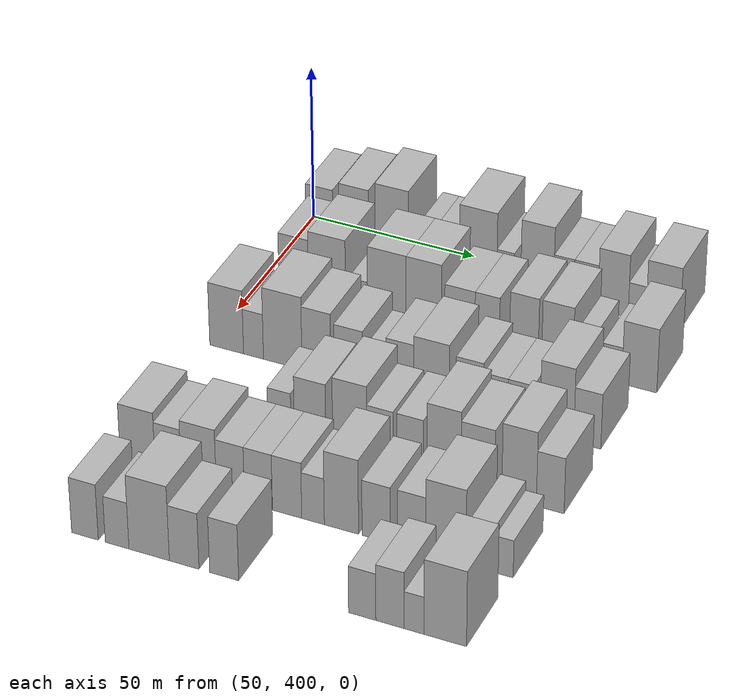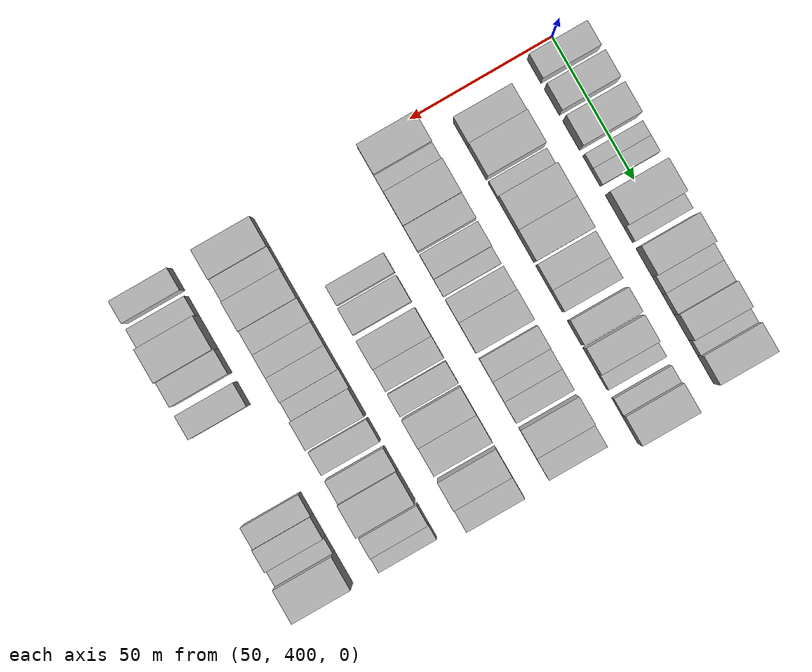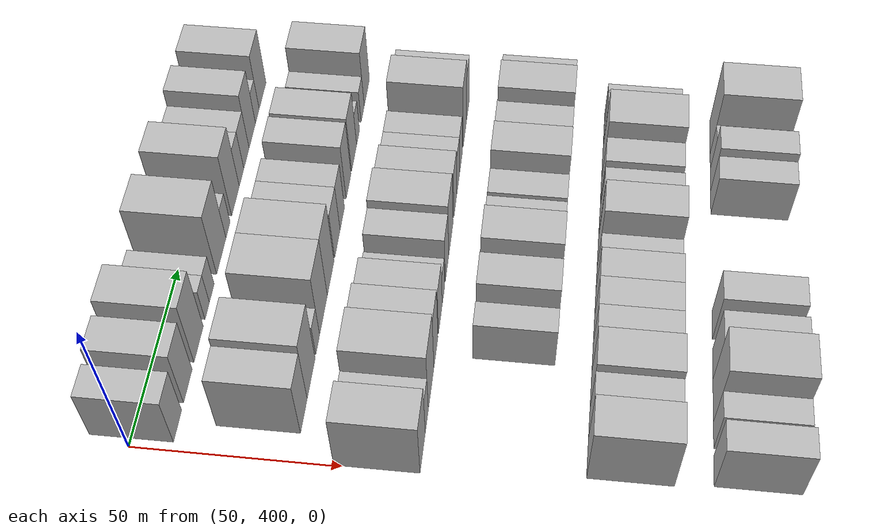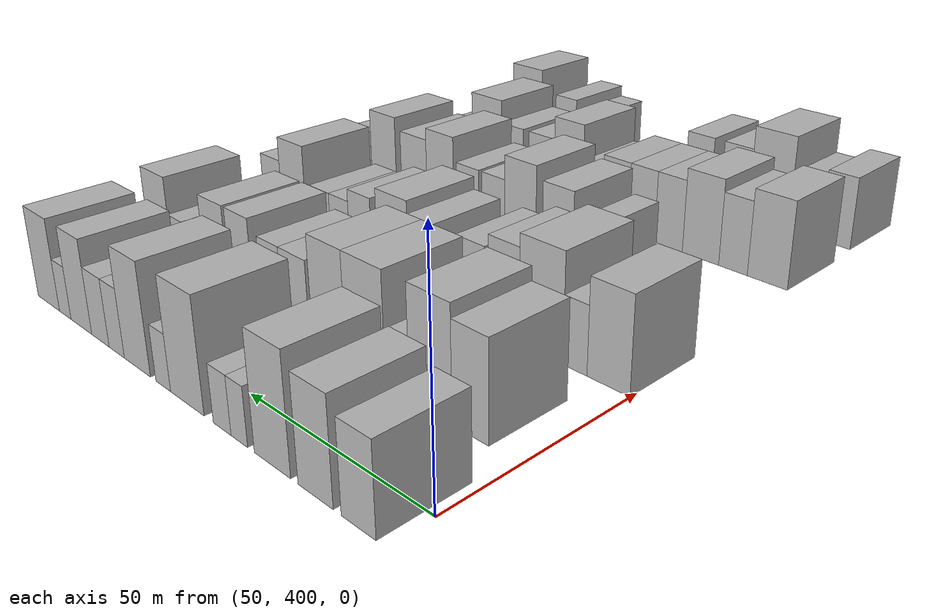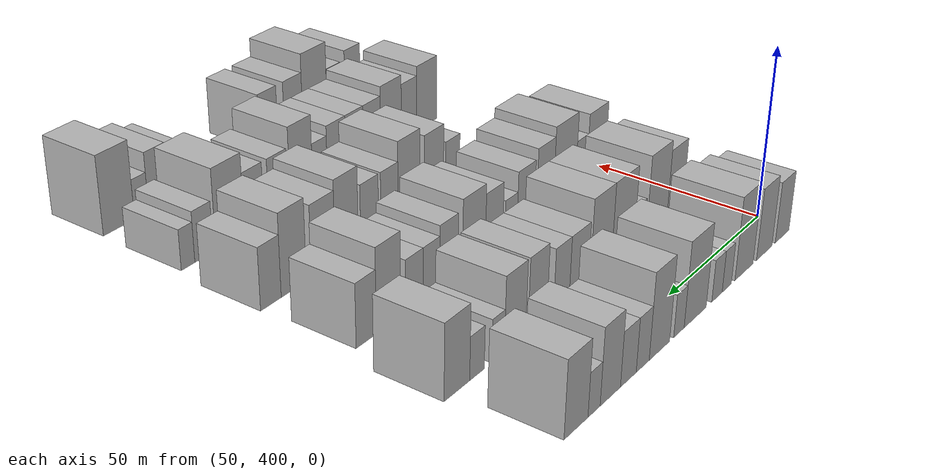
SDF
<sdf version="1.6">
 <world name="default">
  <model name="building_107">
   <static>1</static>
   <pose>50.0000 406.3648 0 0.000000 0.000000 0.000000</pose>
   <link name="link">
    <pose>0 0 9.00 0 0 0</pose>
    <collision name="collision"><geometry><box><size>20.0000 8.3862 18.0000</size></box></geometry></collision>
    <visual name="visual">
     <cast_shadows>0</cast_shadows>
     <geometry><box><size>20.0000 8.3862 18.0000</size></box></geometry>
     <material>
      <script>
       <uri>model://HANNAS_wall/materials/scripts</uri>
       <uri>model://HANNAS_wall/materials/textures</uri>
       <name>vrc/HANNAS_wall</name>
      </script>
     </material>
    </visual>
   </link>
  </model>
  <model name="building_108">
   <static>1</static>
   <pose>50.0000 417.1484 0 0.000000 0.000000 0.000000</pose>
   <link name="link">
    <pose>0 0 10.50 0 0 0</pose>
    <collision name="collision"><geometry><box><size>20.0000 9.1811 21.0000</size></box></geometry></collision>
    <visual name="visual">
     <cast_shadows>0</cast_shadows>
     <geometry><box><size>20.0000 9.1811 21.0000</size></box></geometry>
     <material>
      <script>
       <uri>model://HANNAS_wall/materials/scripts</uri>
       <uri>model://HANNAS_wall/materials/textures</uri>
       <name>vrc/HANNAS_wall</name>
      </script>
     </material>
    </visual>
   </link>
  </model>
  <model name="building_109">
   <static>1</static>
   <pose>50.0000 428.8780 0 0.000000 0.000000 0.000000</pose>
   <link name="link">
    <pose>0 0 12.00 0 0 0</pose>
    <collision name="collision"><geometry><box><size>20.0000 10.2782 24.0000</size></box></geometry></collision>
    <visual name="visual">
     <cast_shadows>0</cast_shadows>
     <geometry><box><size>20.0000 10.2782 24.0000</size></box></geometry>
     <material>
      <script>
       <uri>model://HANNAS_wall/materials/scripts</uri>
       <uri>model://HANNAS_wall/materials/textures</uri>
       <name>vrc/HANNAS_wall</name>
      </script>
     </material>
    </visual>
   </link>
  </model>
  <model name="building_110">
   <static>1</static>
   <pose>50.0000 438.5343 0 0.000000 0.000000 0.000000</pose>
   <link name="link">
    <pose>0 0 6.00 0 0 0</pose>
    <collision name="collision"><geometry><box><size>20.0000 5.0344 12.0000</size></box></geometry></collision>
    <visual name="visual">
     <cast_shadows>0</cast_shadows>
     <geometry><box><size>20.0000 5.0344 12.0000</size></box></geometry>
     <material>
      <script>
       <uri>model://HANNAS_wall/materials/scripts</uri>
       <uri>model://HANNAS_wall/materials/textures</uri>
       <name>vrc/HANNAS_wall</name>
      </script>
     </material>
    </visual>
   </link>
  </model>
  <model name="building_111">
   <static>1</static>
   <pose>50.0000 443.8507 0 0.000000 0.000000 0.000000</pose>
   <link name="link">
    <pose>0 0 6.00 0 0 0</pose>
    <collision name="collision"><geometry><box><size>20.0000 5.5983 12.0000</size></box></geometry></collision>
    <visual name="visual">
     <cast_shadows>0</cast_shadows>
     <geometry><box><size>20.0000 5.5983 12.0000</size></box></geometry>
     <material>
      <script>
       <uri>model://HANNAS_wall/materials/scripts</uri>
       <uri>model://HANNAS_wall/materials/textures</uri>
       <name>vrc/HANNAS_wall</name>
      </script>
     </material>
    </visual>
   </link>
  </model>
  <model name="building_112">
   <static>1</static>
   <pose>50.0000 455.3295 0 0.000000 0.000000 0.000000</pose>
   <link name="link">
    <pose>0 0 12.00 0 0 0</pose>
    <collision name="collision"><geometry><box><size>20.0000 11.3593 24.0000</size></box></geometry></collision>
    <visual name="visual">
     <cast_shadows>0</cast_shadows>
     <geometry><box><size>20.0000 11.3593 24.0000</size></box></geometry>
     <material>
      <script>
       <uri>model://HANNAS_wall/materials/scripts</uri>
       <uri>model://HANNAS_wall/materials/textures</uri>
       <name>vrc/HANNAS_wall</name>
      </script>
     </material>
    </visual>
   </link>
  </model>
  <model name="building_113">
   <static>1</static>
   <pose>50.0000 463.6400 0 0.000000 0.000000 0.000000</pose>
   <link name="link">
    <pose>0 0 6.00 0 0 0</pose>
    <collision name="collision"><geometry><box><size>20.0000 5.2617 12.0000</size></box></geometry></collision>
    <visual name="visual">
     <cast_shadows>0</cast_shadows>
     <geometry><box><size>20.0000 5.2617 12.0000</size></box></geometry>
     <material>
      <script>
       <uri>model://HANNAS_wall/materials/scripts</uri>
       <uri>model://HANNAS_wall/materials/textures</uri>
       <name>vrc/HANNAS_wall</name>
      </script>
     </material>
    </visual>
   </link>
  </model>
  <model name="building_114">
   <static>1</static>
   <pose>50.0000 473.2138 0 0.000000 0.000000 0.000000</pose>
   <link name="link">
    <pose>0 0 12.00 0 0 0</pose>
    <collision name="collision"><geometry><box><size>20.0000 9.8859 24.0000</size></box></geometry></collision>
    <visual name="visual">
     <cast_shadows>0</cast_shadows>
     <geometry><box><size>20.0000 9.8859 24.0000</size></box></geometry>
     <material>
      <script>
       <uri>model://HANNAS_wall/materials/scripts</uri>
       <uri>model://HANNAS_wall/materials/textures</uri>
       <name>vrc/HANNAS_wall</name>
      </script>
     </material>
    </visual>
   </link>
  </model>
  <model name="building_115">
   <static>1</static>
   <pose>50.0000 481.1966 0 0.000000 0.000000 0.000000</pose>
   <link name="link">
    <pose>0 0 7.50 0 0 0</pose>
    <collision name="collision"><geometry><box><size>20.0000 6.0797 15.0000</size></box></geometry></collision>
    <visual name="visual">
     <cast_shadows>0</cast_shadows>
     <geometry><box><size>20.0000 6.0797 15.0000</size></box></geometry>
     <material>
      <script>
       <uri>model://HANNAS_wall/materials/scripts</uri>
       <uri>model://HANNAS_wall/materials/textures</uri>
       <name>vrc/HANNAS_wall</name>
      </script>
     </material>
    </visual>
   </link>
  </model>
  <model name="building_116">
   <static>1</static>
   <pose>50.0000 487.8396 0 0.000000 0.000000 0.000000</pose>
   <link name="link">
    <pose>0 0 7.50 0 0 0</pose>
    <collision name="collision"><geometry><box><size>20.0000 7.2063 15.0000</size></box></geometry></collision>
    <visual name="visual">
     <cast_shadows>0</cast_shadows>
     <geometry><box><size>20.0000 7.2063 15.0000</size></box></geometry>
     <material>
      <script>
       <uri>model://HANNAS_wall/materials/scripts</uri>
       <uri>model://HANNAS_wall/materials/textures</uri>
       <name>vrc/HANNAS_wall</name>
      </script>
     </material>
    </visual>
   </link>
  </model>
  <model name="building_117">
   <static>1</static>
   <pose>50.0000 495.9338 0 0.000000 0.000000 0.000000</pose>
   <link name="link">
    <pose>0 0 10.50 0 0 0</pose>
    <collision name="collision"><geometry><box><size>20.0000 8.9821 21.0000</size></box></geometry></collision>
    <visual name="visual">
     <cast_shadows>0</cast_shadows>
     <geometry><box><size>20.0000 8.9821 21.0000</size></box></geometry>
     <material>
      <script>
       <uri>model://HANNAS_wall/materials/scripts</uri>
       <uri>model://HANNAS_wall/materials/textures</uri>
       <name>vrc/HANNAS_wall</name>
      </script>
     </material>
    </visual>
   </link>
  </model>
  <model name="building_118">
   <static>1</static>
   <pose>50.0000 503.0451 0 0.000000 0.000000 0.000000</pose>
   <link name="link">
    <pose>0 0 6.00 0 0 0</pose>
    <collision name="collision"><geometry><box><size>20.0000 5.2406 12.0000</size></box></geometry></collision>
    <visual name="visual">
     <cast_shadows>0</cast_shadows>
     <geometry><box><size>20.0000 5.2406 12.0000</size></box></geometry>
     <material>
      <script>
       <uri>model://HANNAS_wall/materials/scripts</uri>
       <uri>model://HANNAS_wall/materials/textures</uri>
       <name>vrc/HANNAS_wall</name>
      </script>
     </material>
    </visual>
   </link>
  </model>
  <model name="building_119">
   <static>1</static>
   <pose>50.0000 510.6675 0 0.000000 0.000000 0.000000</pose>
   <link name="link">
    <pose>0 0 10.50 0 0 0</pose>
    <collision name="collision"><geometry><box><size>20.0000 10.0041 21.0000</size></box></geometry></collision>
    <visual name="visual">
     <cast_shadows>0</cast_shadows>
     <geometry><box><size>20.0000 10.0041 21.0000</size></box></geometry>
     <material>
      <script>
       <uri>model://HANNAS_wall/materials/scripts</uri>
       <uri>model://HANNAS_wall/materials/textures</uri>
       <name>vrc/HANNAS_wall</name>
      </script>
     </material>
    </visual>
   </link>
  </model>
  <model name="building_223">
   <static>1</static>
   <pose>79.0000 411.9518 0 0.000000 0.000000 0.000000</pose>
   <link name="link">
    <pose>0 0 10.50 0 0 0</pose>
    <collision name="collision"><geometry><box><size>20.0000 9.1099 21.0000</size></box></geometry></collision>
    <visual name="visual">
     <cast_shadows>0</cast_shadows>
     <geometry><box><size>20.0000 9.1099 21.0000</size></box></geometry>
     <material>
      <script>
       <uri>model://HANNAS_wall/materials/scripts</uri>
       <uri>model://HANNAS_wall/materials/textures</uri>
       <name>vrc/HANNAS_wall</name>
      </script>
     </material>
    </visual>
   </link>
  </model>
  <model name="building_224">
   <static>1</static>
   <pose>79.0000 422.1356 0 0.000000 0.000000 0.000000</pose>
   <link name="link">
    <pose>0 0 12.00 0 0 0</pose>
    <collision name="collision"><geometry><box><size>20.0000 11.2576 24.0000</size></box></geometry></collision>
    <visual name="visual">
     <cast_shadows>0</cast_shadows>
     <geometry><box><size>20.0000 11.2576 24.0000</size></box></geometry>
     <material>
      <script>
       <uri>model://HANNAS_wall/materials/scripts</uri>
       <uri>model://HANNAS_wall/materials/textures</uri>
       <name>vrc/HANNAS_wall</name>
      </script>
     </material>
    </visual>
   </link>
  </model>
  <model name="building_225">
   <static>1</static>
   <pose>79.0000 431.6028 0 0.000000 0.000000 0.000000</pose>
   <link name="link">
    <pose>0 0 6.00 0 0 0</pose>
    <collision name="collision"><geometry><box><size>20.0000 5.6768 12.0000</size></box></geometry></collision>
    <visual name="visual">
     <cast_shadows>0</cast_shadows>
     <geometry><box><size>20.0000 5.6768 12.0000</size></box></geometry>
     <material>
      <script>
       <uri>model://HANNAS_wall/materials/scripts</uri>
       <uri>model://HANNAS_wall/materials/textures</uri>
       <name>vrc/HANNAS_wall</name>
      </script>
     </material>
    </visual>
   </link>
  </model>
  <model name="building_226">
   <static>1</static>
   <pose>79.0000 440.2561 0 0.000000 0.000000 0.000000</pose>
   <link name="link">
    <pose>0 0 12.00 0 0 0</pose>
    <collision name="collision"><geometry><box><size>20.0000 11.6298 24.0000</size></box></geometry></collision>
    <visual name="visual">
     <cast_shadows>0</cast_shadows>
     <geometry><box><size>20.0000 11.6298 24.0000</size></box></geometry>
     <material>
      <script>
       <uri>model://HANNAS_wall/materials/scripts</uri>
       <uri>model://HANNAS_wall/materials/textures</uri>
       <name>vrc/HANNAS_wall</name>
      </script>
     </material>
    </visual>
   </link>
  </model>
  <model name="building_227">
   <static>1</static>
   <pose>79.0000 451.3496 0 0.000000 0.000000 0.000000</pose>
   <link name="link">
    <pose>0 0 12.00 0 0 0</pose>
    <collision name="collision"><geometry><box><size>20.0000 10.5572 24.0000</size></box></geometry></collision>
    <visual name="visual">
     <cast_shadows>0</cast_shadows>
     <geometry><box><size>20.0000 10.5572 24.0000</size></box></geometry>
     <material>
      <script>
       <uri>model://HANNAS_wall/materials/scripts</uri>
       <uri>model://HANNAS_wall/materials/textures</uri>
       <name>vrc/HANNAS_wall</name>
      </script>
     </material>
    </visual>
   </link>
  </model>
  <model name="building_228">
   <static>1</static>
   <pose>79.0000 462.1126 0 0.000000 0.000000 0.000000</pose>
   <link name="link">
    <pose>0 0 9.00 0 0 0</pose>
    <collision name="collision"><geometry><box><size>20.0000 8.9687 18.0000</size></box></geometry></collision>
    <visual name="visual">
     <cast_shadows>0</cast_shadows>
     <geometry><box><size>20.0000 8.9687 18.0000</size></box></geometry>
     <material>
      <script>
       <uri>model://HANNAS_wall/materials/scripts</uri>
       <uri>model://HANNAS_wall/materials/textures</uri>
       <name>vrc/HANNAS_wall</name>
      </script>
     </material>
    </visual>
   </link>
  </model>
  <model name="building_229">
   <static>1</static>
   <pose>79.0000 470.2399 0 0.000000 0.000000 0.000000</pose>
   <link name="link">
    <pose>0 0 9.00 0 0 0</pose>
    <collision name="collision"><geometry><box><size>20.0000 7.2860 18.0000</size></box></geometry></collision>
    <visual name="visual">
     <cast_shadows>0</cast_shadows>
     <geometry><box><size>20.0000 7.2860 18.0000</size></box></geometry>
     <material>
      <script>
       <uri>model://HANNAS_wall/materials/scripts</uri>
       <uri>model://HANNAS_wall/materials/textures</uri>
       <name>vrc/HANNAS_wall</name>
      </script>
     </material>
    </visual>
   </link>
  </model>
  <model name="building_230">
   <static>1</static>
   <pose>79.0000 481.1152 0 0.000000 0.000000 0.000000</pose>
   <link name="link">
    <pose>0 0 10.50 0 0 0</pose>
    <collision name="collision"><geometry><box><size>20.0000 8.4647 21.0000</size></box></geometry></collision>
    <visual name="visual">
     <cast_shadows>0</cast_shadows>
     <geometry><box><size>20.0000 8.4647 21.0000</size></box></geometry>
     <material>
      <script>
       <uri>model://HANNAS_wall/materials/scripts</uri>
       <uri>model://HANNAS_wall/materials/textures</uri>
       <name>vrc/HANNAS_wall</name>
      </script>
     </material>
    </visual>
   </link>
  </model>
  <model name="building_231">
   <static>1</static>
   <pose>79.0000 490.9327 0 0.000000 0.000000 0.000000</pose>
   <link name="link">
    <pose>0 0 10.50 0 0 0</pose>
    <collision name="collision"><geometry><box><size>20.0000 9.1704 21.0000</size></box></geometry></collision>
    <visual name="visual">
     <cast_shadows>0</cast_shadows>
     <geometry><box><size>20.0000 9.1704 21.0000</size></box></geometry>
     <material>
      <script>
       <uri>model://HANNAS_wall/materials/scripts</uri>
       <uri>model://HANNAS_wall/materials/textures</uri>
       <name>vrc/HANNAS_wall</name>
      </script>
     </material>
    </visual>
   </link>
  </model>
  <model name="building_232">
   <static>1</static>
   <pose>79.0000 498.1763 0 0.000000 0.000000 0.000000</pose>
   <link name="link">
    <pose>0 0 6.00 0 0 0</pose>
    <collision name="collision"><geometry><box><size>20.0000 5.3168 12.0000</size></box></geometry></collision>
    <visual name="visual">
     <cast_shadows>0</cast_shadows>
     <geometry><box><size>20.0000 5.3168 12.0000</size></box></geometry>
     <material>
      <script>
       <uri>model://HANNAS_wall/materials/scripts</uri>
       <uri>model://HANNAS_wall/materials/textures</uri>
       <name>vrc/HANNAS_wall</name>
      </script>
     </material>
    </visual>
   </link>
  </model>
  <model name="building_233">
   <static>1</static>
   <pose>79.0000 506.7821 0 0.000000 0.000000 0.000000</pose>
   <link name="link">
    <pose>0 0 6.00 0 0 0</pose>
    <collision name="collision"><geometry><box><size>20.0000 5.8948 12.0000</size></box></geometry></collision>
    <visual name="visual">
     <cast_shadows>0</cast_shadows>
     <geometry><box><size>20.0000 5.8948 12.0000</size></box></geometry>
     <material>
      <script>
       <uri>model://HANNAS_wall/materials/scripts</uri>
       <uri>model://HANNAS_wall/materials/textures</uri>
       <name>vrc/HANNAS_wall</name>
      </script>
     </material>
    </visual>
   </link>
  </model>
  <model name="building_234">
   <static>1</static>
   <pose>79.0000 514.7663 0 0.000000 0.000000 0.000000</pose>
   <link name="link">
    <pose>0 0 10.50 0 0 0</pose>
    <collision name="collision"><geometry><box><size>20.0000 10.0737 21.0000</size></box></geometry></collision>
    <visual name="visual">
     <cast_shadows>0</cast_shadows>
     <geometry><box><size>20.0000 10.0737 21.0000</size></box></geometry>
     <material>
      <script>
       <uri>model://HANNAS_wall/materials/scripts</uri>
       <uri>model://HANNAS_wall/materials/textures</uri>
       <name>vrc/HANNAS_wall</name>
      </script>
     </material>
    </visual>
   </link>
  </model>
  <model name="building_331">
   <static>1</static>
   <pose>108.0000 405.2340 0 0.000000 0.000000 0.000000</pose>
   <link name="link">
    <pose>0 0 10.50 0 0 0</pose>
    <collision name="collision"><geometry><box><size>20.0000 10.2658 21.0000</size></box></geometry></collision>
    <visual name="visual">
     <cast_shadows>0</cast_shadows>
     <geometry><box><size>20.0000 10.2658 21.0000</size></box></geometry>
     <material>
      <script>
       <uri>model://HANNAS_wall/materials/scripts</uri>
       <uri>model://HANNAS_wall/materials/textures</uri>
       <name>vrc/HANNAS_wall</name>
      </script>
     </material>
    </visual>
   </link>
  </model>
  <model name="building_332">
   <static>1</static>
   <pose>108.0000 413.3752 0 0.000000 0.000000 0.000000</pose>
   <link name="link">
    <pose>0 0 7.50 0 0 0</pose>
    <collision name="collision"><geometry><box><size>20.0000 6.0167 15.0000</size></box></geometry></collision>
    <visual name="visual">
     <cast_shadows>0</cast_shadows>
     <geometry><box><size>20.0000 6.0167 15.0000</size></box></geometry>
     <material>
      <script>
       <uri>model://HANNAS_wall/materials/scripts</uri>
       <uri>model://HANNAS_wall/materials/textures</uri>
       <name>vrc/HANNAS_wall</name>
      </script>
     </material>
    </visual>
   </link>
  </model>
  <model name="building_333">
   <static>1</static>
   <pose>108.0000 422.1863 0 0.000000 0.000000 0.000000</pose>
   <link name="link">
    <pose>0 0 12.00 0 0 0</pose>
    <collision name="collision"><geometry><box><size>20.0000 11.6055 24.0000</size></box></geometry></collision>
    <visual name="visual">
     <cast_shadows>0</cast_shadows>
     <geometry><box><size>20.0000 11.6055 24.0000</size></box></geometry>
     <material>
      <script>
       <uri>model://HANNAS_wall/materials/scripts</uri>
       <uri>model://HANNAS_wall/materials/textures</uri>
       <name>vrc/HANNAS_wall</name>
      </script>
     </material>
    </visual>
   </link>
  </model>
  <model name="building_334">
   <static>1</static>
   <pose>108.0000 432.3052 0 0.000000 0.000000 0.000000</pose>
   <link name="link">
    <pose>0 0 10.50 0 0 0</pose>
    <collision name="collision"><geometry><box><size>20.0000 8.6322 21.0000</size></box></geometry></collision>
    <visual name="visual">
     <cast_shadows>0</cast_shadows>
     <geometry><box><size>20.0000 8.6322 21.0000</size></box></geometry>
     <material>
      <script>
       <uri>model://HANNAS_wall/materials/scripts</uri>
       <uri>model://HANNAS_wall/materials/textures</uri>
       <name>vrc/HANNAS_wall</name>
      </script>
     </material>
    </visual>
   </link>
  </model>
  <model name="building_335">
   <static>1</static>
   <pose>108.0000 441.8504 0 0.000000 0.000000 0.000000</pose>
   <link name="link">
    <pose>0 0 9.00 0 0 0</pose>
    <collision name="collision"><geometry><box><size>20.0000 8.4583 18.0000</size></box></geometry></collision>
    <visual name="visual">
     <cast_shadows>0</cast_shadows>
     <geometry><box><size>20.0000 8.4583 18.0000</size></box></geometry>
     <material>
      <script>
       <uri>model://HANNAS_wall/materials/scripts</uri>
       <uri>model://HANNAS_wall/materials/textures</uri>
       <name>vrc/HANNAS_wall</name>
      </script>
     </material>
    </visual>
   </link>
  </model>
  <model name="building_336">
   <static>1</static>
   <pose>108.0000 449.0225 0 0.000000 0.000000 0.000000</pose>
   <link name="link">
    <pose>0 0 6.00 0 0 0</pose>
    <collision name="collision"><geometry><box><size>20.0000 5.8857 12.0000</size></box></geometry></collision>
    <visual name="visual">
     <cast_shadows>0</cast_shadows>
     <geometry><box><size>20.0000 5.8857 12.0000</size></box></geometry>
     <material>
      <script>
       <uri>model://HANNAS_wall/materials/scripts</uri>
       <uri>model://HANNAS_wall/materials/textures</uri>
       <name>vrc/HANNAS_wall</name>
      </script>
     </material>
    </visual>
   </link>
  </model>
  <model name="building_337">
   <static>1</static>
   <pose>108.0000 457.0163 0 0.000000 0.000000 0.000000</pose>
   <link name="link">
    <pose>0 0 9.00 0 0 0</pose>
    <collision name="collision"><geometry><box><size>20.0000 8.1020 18.0000</size></box></geometry></collision>
    <visual name="visual">
     <cast_shadows>0</cast_shadows>
     <geometry><box><size>20.0000 8.1020 18.0000</size></box></geometry>
     <material>
      <script>
       <uri>model://HANNAS_wall/materials/scripts</uri>
       <uri>model://HANNAS_wall/materials/textures</uri>
       <name>vrc/HANNAS_wall</name>
      </script>
     </material>
    </visual>
   </link>
  </model>
  <model name="building_338">
   <static>1</static>
   <pose>108.0000 466.2373 0 0.000000 0.000000 0.000000</pose>
   <link name="link">
    <pose>0 0 10.50 0 0 0</pose>
    <collision name="collision"><geometry><box><size>20.0000 10.3399 21.0000</size></box></geometry></collision>
    <visual name="visual">
     <cast_shadows>0</cast_shadows>
     <geometry><box><size>20.0000 10.3399 21.0000</size></box></geometry>
     <material>
      <script>
       <uri>model://HANNAS_wall/materials/scripts</uri>
       <uri>model://HANNAS_wall/materials/textures</uri>
       <name>vrc/HANNAS_wall</name>
      </script>
     </material>
    </visual>
   </link>
  </model>
  <model name="building_339">
   <static>1</static>
   <pose>108.0000 477.3571 0 0.000000 0.000000 0.000000</pose>
   <link name="link">
    <pose>0 0 9.00 0 0 0</pose>
    <collision name="collision"><geometry><box><size>20.0000 7.8997 18.0000</size></box></geometry></collision>
    <visual name="visual">
     <cast_shadows>0</cast_shadows>
     <geometry><box><size>20.0000 7.8997 18.0000</size></box></geometry>
     <material>
      <script>
       <uri>model://HANNAS_wall/materials/scripts</uri>
       <uri>model://HANNAS_wall/materials/textures</uri>
       <name>vrc/HANNAS_wall</name>
      </script>
     </material>
    </visual>
   </link>
  </model>
  <model name="building_340">
   <static>1</static>
   <pose>108.0000 484.8222 0 0.000000 0.000000 0.000000</pose>
   <link name="link">
    <pose>0 0 7.50 0 0 0</pose>
    <collision name="collision"><geometry><box><size>20.0000 7.0305 15.0000</size></box></geometry></collision>
    <visual name="visual">
     <cast_shadows>0</cast_shadows>
     <geometry><box><size>20.0000 7.0305 15.0000</size></box></geometry>
     <material>
      <script>
       <uri>model://HANNAS_wall/materials/scripts</uri>
       <uri>model://HANNAS_wall/materials/textures</uri>
       <name>vrc/HANNAS_wall</name>
      </script>
     </material>
    </visual>
   </link>
  </model>
  <model name="building_341">
   <static>1</static>
   <pose>108.0000 491.9657 0 0.000000 0.000000 0.000000</pose>
   <link name="link">
    <pose>0 0 7.50 0 0 0</pose>
    <collision name="collision"><geometry><box><size>20.0000 7.2565 15.0000</size></box></geometry></collision>
    <visual name="visual">
     <cast_shadows>0</cast_shadows>
     <geometry><box><size>20.0000 7.2565 15.0000</size></box></geometry>
     <material>
      <script>
       <uri>model://HANNAS_wall/materials/scripts</uri>
       <uri>model://HANNAS_wall/materials/textures</uri>
       <name>vrc/HANNAS_wall</name>
      </script>
     </material>
    </visual>
   </link>
  </model>
  <model name="building_342">
   <static>1</static>
   <pose>108.0000 502.4225 0 0.000000 0.000000 0.000000</pose>
   <link name="link">
    <pose>0 0 12.00 0 0 0</pose>
    <collision name="collision"><geometry><box><size>20.0000 9.6571 24.0000</size></box></geometry></collision>
    <visual name="visual">
     <cast_shadows>0</cast_shadows>
     <geometry><box><size>20.0000 9.6571 24.0000</size></box></geometry>
     <material>
      <script>
       <uri>model://HANNAS_wall/materials/scripts</uri>
       <uri>model://HANNAS_wall/materials/textures</uri>
       <name>vrc/HANNAS_wall</name>
      </script>
     </material>
    </visual>
   </link>
  </model>
  <model name="building_343">
   <static>1</static>
   <pose>108.0000 511.1121 0 0.000000 0.000000 0.000000</pose>
   <link name="link">
    <pose>0 0 9.00 0 0 0</pose>
    <collision name="collision"><geometry><box><size>20.0000 7.7220 18.0000</size></box></geometry></collision>
    <visual name="visual">
     <cast_shadows>0</cast_shadows>
     <geometry><box><size>20.0000 7.7220 18.0000</size></box></geometry>
     <material>
      <script>
       <uri>model://HANNAS_wall/materials/scripts</uri>
       <uri>model://HANNAS_wall/materials/textures</uri>
       <name>vrc/HANNAS_wall</name>
      </script>
     </material>
    </visual>
   </link>
  </model>
  <model name="building_449">
   <static>1</static>
   <pose>137.0000 434.9886 0 0.000000 0.000000 0.000000</pose>
   <link name="link">
    <pose>0 0 7.50 0 0 0</pose>
    <collision name="collision"><geometry><box><size>20.0000 6.7760 15.0000</size></box></geometry></collision>
    <visual name="visual">
     <cast_shadows>0</cast_shadows>
     <geometry><box><size>20.0000 6.7760 15.0000</size></box></geometry>
     <material>
      <script>
       <uri>model://HANNAS_wall/materials/scripts</uri>
       <uri>model://HANNAS_wall/materials/textures</uri>
       <name>vrc/HANNAS_wall</name>
      </script>
     </material>
    </visual>
   </link>
  </model>
  <model name="building_450">
   <static>1</static>
   <pose>137.0000 443.9431 0 0.000000 0.000000 0.000000</pose>
   <link name="link">
    <pose>0 0 10.50 0 0 0</pose>
    <collision name="collision"><geometry><box><size>20.0000 9.1330 21.0000</size></box></geometry></collision>
    <visual name="visual">
     <cast_shadows>0</cast_shadows>
     <geometry><box><size>20.0000 9.1330 21.0000</size></box></geometry>
     <material>
      <script>
       <uri>model://HANNAS_wall/materials/scripts</uri>
       <uri>model://HANNAS_wall/materials/textures</uri>
       <name>vrc/HANNAS_wall</name>
      </script>
     </material>
    </visual>
   </link>
  </model>
  <model name="building_451">
   <static>1</static>
   <pose>137.0000 455.4150 0 0.000000 0.000000 0.000000</pose>
   <link name="link">
    <pose>0 0 12.00 0 0 0</pose>
    <collision name="collision"><geometry><box><size>20.0000 9.8108 24.0000</size></box></geometry></collision>
    <visual name="visual">
     <cast_shadows>0</cast_shadows>
     <geometry><box><size>20.0000 9.8108 24.0000</size></box></geometry>
     <material>
      <script>
       <uri>model://HANNAS_wall/materials/scripts</uri>
       <uri>model://HANNAS_wall/materials/textures</uri>
       <name>vrc/HANNAS_wall</name>
      </script>
     </material>
    </visual>
   </link>
  </model>
  <model name="building_452">
   <static>1</static>
   <pose>137.0000 464.1012 0 0.000000 0.000000 0.000000</pose>
   <link name="link">
    <pose>0 0 9.00 0 0 0</pose>
    <collision name="collision"><geometry><box><size>20.0000 7.5617 18.0000</size></box></geometry></collision>
    <visual name="visual">
     <cast_shadows>0</cast_shadows>
     <geometry><box><size>20.0000 7.5617 18.0000</size></box></geometry>
     <material>
      <script>
       <uri>model://HANNAS_wall/materials/scripts</uri>
       <uri>model://HANNAS_wall/materials/textures</uri>
       <name>vrc/HANNAS_wall</name>
      </script>
     </material>
    </visual>
   </link>
  </model>
  <model name="building_453">
   <static>1</static>
   <pose>137.0000 472.7137 0 0.000000 0.000000 0.000000</pose>
   <link name="link">
    <pose>0 0 9.00 0 0 0</pose>
    <collision name="collision"><geometry><box><size>20.0000 7.6634 18.0000</size></box></geometry></collision>
    <visual name="visual">
     <cast_shadows>0</cast_shadows>
     <geometry><box><size>20.0000 7.6634 18.0000</size></box></geometry>
     <material>
      <script>
       <uri>model://HANNAS_wall/materials/scripts</uri>
       <uri>model://HANNAS_wall/materials/textures</uri>
       <name>vrc/HANNAS_wall</name>
      </script>
     </material>
    </visual>
   </link>
  </model>
  <model name="building_454">
   <static>1</static>
   <pose>137.0000 482.3595 0 0.000000 0.000000 0.000000</pose>
   <link name="link">
    <pose>0 0 12.00 0 0 0</pose>
    <collision name="collision"><geometry><box><size>20.0000 9.6280 24.0000</size></box></geometry></collision>
    <visual name="visual">
     <cast_shadows>0</cast_shadows>
     <geometry><box><size>20.0000 9.6280 24.0000</size></box></geometry>
     <material>
      <script>
       <uri>model://HANNAS_wall/materials/scripts</uri>
       <uri>model://HANNAS_wall/materials/textures</uri>
       <name>vrc/HANNAS_wall</name>
      </script>
     </material>
    </visual>
   </link>
  </model>
  <model name="building_455">
   <static>1</static>
   <pose>137.0000 491.9420 0 0.000000 0.000000 0.000000</pose>
   <link name="link">
    <pose>0 0 10.50 0 0 0</pose>
    <collision name="collision"><geometry><box><size>20.0000 9.5372 21.0000</size></box></geometry></collision>
    <visual name="visual">
     <cast_shadows>0</cast_shadows>
     <geometry><box><size>20.0000 9.5372 21.0000</size></box></geometry>
     <material>
      <script>
       <uri>model://HANNAS_wall/materials/scripts</uri>
       <uri>model://HANNAS_wall/materials/textures</uri>
       <name>vrc/HANNAS_wall</name>
      </script>
     </material>
    </visual>
   </link>
  </model>
  <model name="building_456">
   <static>1</static>
   <pose>137.0000 503.5576 0 0.000000 0.000000 0.000000</pose>
   <link name="link">
    <pose>0 0 12.00 0 0 0</pose>
    <collision name="collision"><geometry><box><size>20.0000 9.6939 24.0000</size></box></geometry></collision>
    <visual name="visual">
     <cast_shadows>0</cast_shadows>
     <geometry><box><size>20.0000 9.6939 24.0000</size></box></geometry>
     <material>
      <script>
       <uri>model://HANNAS_wall/materials/scripts</uri>
       <uri>model://HANNAS_wall/materials/textures</uri>
       <name>vrc/HANNAS_wall</name>
      </script>
     </material>
    </visual>
   </link>
  </model>
  <model name="building_457">
   <static>1</static>
   <pose>137.0000 512.2626 0 0.000000 0.000000 0.000000</pose>
   <link name="link">
    <pose>0 0 9.00 0 0 0</pose>
    <collision name="collision"><geometry><box><size>20.0000 7.7161 18.0000</size></box></geometry></collision>
    <visual name="visual">
     <cast_shadows>0</cast_shadows>
     <geometry><box><size>20.0000 7.7161 18.0000</size></box></geometry>
     <material>
      <script>
       <uri>model://HANNAS_wall/materials/scripts</uri>
       <uri>model://HANNAS_wall/materials/textures</uri>
       <name>vrc/HANNAS_wall</name>
      </script>
     </material>
    </visual>
   </link>
  </model>
  <model name="building_559">
   <static>1</static>
   <pose>166.0000 407.7563 0 0.000000 0.000000 0.000000</pose>
   <link name="link">
    <pose>0 0 10.50 0 0 0</pose>
    <collision name="collision"><geometry><box><size>20.0000 10.2013 21.0000</size></box></geometry></collision>
    <visual name="visual">
     <cast_shadows>0</cast_shadows>
     <geometry><box><size>20.0000 10.2013 21.0000</size></box></geometry>
     <material>
      <script>
       <uri>model://HANNAS_wall/materials/scripts</uri>
       <uri>model://HANNAS_wall/materials/textures</uri>
       <name>vrc/HANNAS_wall</name>
      </script>
     </material>
    </visual>
   </link>
  </model>
  <model name="building_560">
   <static>1</static>
   <pose>166.0000 416.6614 0 0.000000 0.000000 0.000000</pose>
   <link name="link">
    <pose>0 0 9.00 0 0 0</pose>
    <collision name="collision"><geometry><box><size>20.0000 7.6089 18.0000</size></box></geometry></collision>
    <visual name="visual">
     <cast_shadows>0</cast_shadows>
     <geometry><box><size>20.0000 7.6089 18.0000</size></box></geometry>
     <material>
      <script>
       <uri>model://HANNAS_wall/materials/scripts</uri>
       <uri>model://HANNAS_wall/materials/textures</uri>
       <name>vrc/HANNAS_wall</name>
      </script>
     </material>
    </visual>
   </link>
  </model>
  <model name="building_561">
   <static>1</static>
   <pose>166.0000 425.5182 0 0.000000 0.000000 0.000000</pose>
   <link name="link">
    <pose>0 0 10.50 0 0 0</pose>
    <collision name="collision"><geometry><box><size>20.0000 10.1046 21.0000</size></box></geometry></collision>
    <visual name="visual">
     <cast_shadows>0</cast_shadows>
     <geometry><box><size>20.0000 10.1046 21.0000</size></box></geometry>
     <material>
      <script>
       <uri>model://HANNAS_wall/materials/scripts</uri>
       <uri>model://HANNAS_wall/materials/textures</uri>
       <name>vrc/HANNAS_wall</name>
      </script>
     </material>
    </visual>
   </link>
  </model>
  <model name="building_562">
   <static>1</static>
   <pose>166.0000 434.6310 0 0.000000 0.000000 0.000000</pose>
   <link name="link">
    <pose>0 0 9.00 0 0 0</pose>
    <collision name="collision"><geometry><box><size>20.0000 8.1209 18.0000</size></box></geometry></collision>
    <visual name="visual">
     <cast_shadows>0</cast_shadows>
     <geometry><box><size>20.0000 8.1209 18.0000</size></box></geometry>
     <material>
      <script>
       <uri>model://HANNAS_wall/materials/scripts</uri>
       <uri>model://HANNAS_wall/materials/textures</uri>
       <name>vrc/HANNAS_wall</name>
      </script>
     </material>
    </visual>
   </link>
  </model>
  <model name="building_563">
   <static>1</static>
   <pose>166.0000 442.6776 0 0.000000 0.000000 0.000000</pose>
   <link name="link">
    <pose>0 0 9.00 0 0 0</pose>
    <collision name="collision"><geometry><box><size>20.0000 7.9723 18.0000</size></box></geometry></collision>
    <visual name="visual">
     <cast_shadows>0</cast_shadows>
     <geometry><box><size>20.0000 7.9723 18.0000</size></box></geometry>
     <material>
      <script>
       <uri>model://HANNAS_wall/materials/scripts</uri>
       <uri>model://HANNAS_wall/materials/textures</uri>
       <name>vrc/HANNAS_wall</name>
      </script>
     </material>
    </visual>
   </link>
  </model>
  <model name="building_564">
   <static>1</static>
   <pose>166.0000 450.8369 0 0.000000 0.000000 0.000000</pose>
   <link name="link">
    <pose>0 0 9.00 0 0 0</pose>
    <collision name="collision"><geometry><box><size>20.0000 8.3464 18.0000</size></box></geometry></collision>
    <visual name="visual">
     <cast_shadows>0</cast_shadows>
     <geometry><box><size>20.0000 8.3464 18.0000</size></box></geometry>
     <material>
      <script>
       <uri>model://HANNAS_wall/materials/scripts</uri>
       <uri>model://HANNAS_wall/materials/textures</uri>
       <name>vrc/HANNAS_wall</name>
      </script>
     </material>
    </visual>
   </link>
  </model>
  <model name="building_565">
   <static>1</static>
   <pose>166.0000 458.2173 0 0.000000 0.000000 0.000000</pose>
   <link name="link">
    <pose>0 0 7.50 0 0 0</pose>
    <collision name="collision"><geometry><box><size>20.0000 6.4144 15.0000</size></box></geometry></collision>
    <visual name="visual">
     <cast_shadows>0</cast_shadows>
     <geometry><box><size>20.0000 6.4144 15.0000</size></box></geometry>
     <material>
      <script>
       <uri>model://HANNAS_wall/materials/scripts</uri>
       <uri>model://HANNAS_wall/materials/textures</uri>
       <name>vrc/HANNAS_wall</name>
      </script>
     </material>
    </visual>
   </link>
  </model>
  <model name="building_566">
   <static>1</static>
   <pose>166.0000 466.2425 0 0.000000 0.000000 0.000000</pose>
   <link name="link">
    <pose>0 0 12.00 0 0 0</pose>
    <collision name="collision"><geometry><box><size>20.0000 9.6360 24.0000</size></box></geometry></collision>
    <visual name="visual">
     <cast_shadows>0</cast_shadows>
     <geometry><box><size>20.0000 9.6360 24.0000</size></box></geometry>
     <material>
      <script>
       <uri>model://HANNAS_wall/materials/scripts</uri>
       <uri>model://HANNAS_wall/materials/textures</uri>
       <name>vrc/HANNAS_wall</name>
      </script>
     </material>
    </visual>
   </link>
  </model>
  <model name="building_567">
   <static>1</static>
   <pose>166.0000 475.9957 0 0.000000 0.000000 0.000000</pose>
   <link name="link">
    <pose>0 0 9.00 0 0 0</pose>
    <collision name="collision"><geometry><box><size>20.0000 7.8703 18.0000</size></box></geometry></collision>
    <visual name="visual">
     <cast_shadows>0</cast_shadows>
     <geometry><box><size>20.0000 7.8703 18.0000</size></box></geometry>
     <material>
      <script>
       <uri>model://HANNAS_wall/materials/scripts</uri>
       <uri>model://HANNAS_wall/materials/textures</uri>
       <name>vrc/HANNAS_wall</name>
      </script>
     </material>
    </visual>
   </link>
  </model>
  <model name="building_568">
   <static>1</static>
   <pose>166.0000 485.8664 0 0.000000 0.000000 0.000000</pose>
   <link name="link">
    <pose>0 0 9.00 0 0 0</pose>
    <collision name="collision"><geometry><box><size>20.0000 7.8712 18.0000</size></box></geometry></collision>
    <visual name="visual">
     <cast_shadows>0</cast_shadows>
     <geometry><box><size>20.0000 7.8712 18.0000</size></box></geometry>
     <material>
      <script>
       <uri>model://HANNAS_wall/materials/scripts</uri>
       <uri>model://HANNAS_wall/materials/textures</uri>
       <name>vrc/HANNAS_wall</name>
      </script>
     </material>
    </visual>
   </link>
  </model>
  <model name="building_569">
   <static>1</static>
   <pose>166.0000 495.3633 0 0.000000 0.000000 0.000000</pose>
   <link name="link">
    <pose>0 0 12.00 0 0 0</pose>
    <collision name="collision"><geometry><box><size>20.0000 11.1227 24.0000</size></box></geometry></collision>
    <visual name="visual">
     <cast_shadows>0</cast_shadows>
     <geometry><box><size>20.0000 11.1227 24.0000</size></box></geometry>
     <material>
      <script>
       <uri>model://HANNAS_wall/materials/scripts</uri>
       <uri>model://HANNAS_wall/materials/textures</uri>
       <name>vrc/HANNAS_wall</name>
      </script>
     </material>
    </visual>
   </link>
  </model>
  <model name="building_570">
   <static>1</static>
   <pose>166.0000 505.3951 0 0.000000 0.000000 0.000000</pose>
   <link name="link">
    <pose>0 0 7.50 0 0 0</pose>
    <collision name="collision"><geometry><box><size>20.0000 6.9408 15.0000</size></box></geometry></collision>
    <visual name="visual">
     <cast_shadows>0</cast_shadows>
     <geometry><box><size>20.0000 6.9408 15.0000</size></box></geometry>
     <material>
      <script>
       <uri>model://HANNAS_wall/materials/scripts</uri>
       <uri>model://HANNAS_wall/materials/textures</uri>
       <name>vrc/HANNAS_wall</name>
      </script>
     </material>
    </visual>
   </link>
  </model>
  <model name="building_571">
   <static>1</static>
   <pose>166.0000 511.3765 0 0.000000 0.000000 0.000000</pose>
   <link name="link">
    <pose>0 0 6.00 0 0 0</pose>
    <collision name="collision"><geometry><box><size>20.0000 5.0221 12.0000</size></box></geometry></collision>
    <visual name="visual">
     <cast_shadows>0</cast_shadows>
     <geometry><box><size>20.0000 5.0221 12.0000</size></box></geometry>
     <material>
      <script>
       <uri>model://HANNAS_wall/materials/scripts</uri>
       <uri>model://HANNAS_wall/materials/textures</uri>
       <name>vrc/HANNAS_wall</name>
      </script>
     </material>
    </visual>
   </link>
  </model>
  <model name="building_679">
   <static>1</static>
   <pose>195.0000 407.3294 0 0.000000 0.000000 0.000000</pose>
   <link name="link">
    <pose>0 0 9.00 0 0 0</pose>
    <collision name="collision"><geometry><box><size>20.0000 7.6775 18.0000</size></box></geometry></collision>
    <visual name="visual">
     <cast_shadows>0</cast_shadows>
     <geometry><box><size>20.0000 7.6775 18.0000</size></box></geometry>
     <material>
      <script>
       <uri>model://HANNAS_wall/materials/scripts</uri>
       <uri>model://HANNAS_wall/materials/textures</uri>
       <name>vrc/HANNAS_wall</name>
      </script>
     </material>
    </visual>
   </link>
  </model>
  <model name="building_680">
   <static>1</static>
   <pose>195.0000 416.5654 0 0.000000 0.000000 0.000000</pose>
   <link name="link">
    <pose>0 0 7.50 0 0 0</pose>
    <collision name="collision"><geometry><box><size>20.0000 6.7944 15.0000</size></box></geometry></collision>
    <visual name="visual">
     <cast_shadows>0</cast_shadows>
     <geometry><box><size>20.0000 6.7944 15.0000</size></box></geometry>
     <material>
      <script>
       <uri>model://HANNAS_wall/materials/scripts</uri>
       <uri>model://HANNAS_wall/materials/textures</uri>
       <name>vrc/HANNAS_wall</name>
      </script>
     </material>
    </visual>
   </link>
  </model>
  <model name="building_681">
   <static>1</static>
   <pose>195.0000 425.7211 0 0.000000 0.000000 0.000000</pose>
   <link name="link">
    <pose>0 0 12.00 0 0 0</pose>
    <collision name="collision"><geometry><box><size>20.0000 11.5171 24.0000</size></box></geometry></collision>
    <visual name="visual">
     <cast_shadows>0</cast_shadows>
     <geometry><box><size>20.0000 11.5171 24.0000</size></box></geometry>
     <material>
      <script>
       <uri>model://HANNAS_wall/materials/scripts</uri>
       <uri>model://HANNAS_wall/materials/textures</uri>
       <name>vrc/HANNAS_wall</name>
      </script>
     </material>
    </visual>
   </link>
  </model>
  <model name="building_682">
   <static>1</static>
   <pose>195.0000 435.6749 0 0.000000 0.000000 0.000000</pose>
   <link name="link">
    <pose>0 0 9.00 0 0 0</pose>
    <collision name="collision"><geometry><box><size>20.0000 8.3907 18.0000</size></box></geometry></collision>
    <visual name="visual">
     <cast_shadows>0</cast_shadows>
     <geometry><box><size>20.0000 8.3907 18.0000</size></box></geometry>
     <material>
      <script>
       <uri>model://HANNAS_wall/materials/scripts</uri>
       <uri>model://HANNAS_wall/materials/textures</uri>
       <name>vrc/HANNAS_wall</name>
      </script>
     </material>
    </visual>
   </link>
  </model>
  <model name="building_683">
   <static>1</static>
   <pose>195.0000 446.9417 0 0.000000 0.000000 0.000000</pose>
   <link name="link">
    <pose>0 0 9.00 0 0 0</pose>
    <collision name="collision"><geometry><box><size>20.0000 8.1428 18.0000</size></box></geometry></collision>
    <visual name="visual">
     <cast_shadows>0</cast_shadows>
     <geometry><box><size>20.0000 8.1428 18.0000</size></box></geometry>
     <material>
      <script>
       <uri>model://HANNAS_wall/materials/scripts</uri>
       <uri>model://HANNAS_wall/materials/textures</uri>
       <name>vrc/HANNAS_wall</name>
      </script>
     </material>
    </visual>
   </link>
  </model>
  <model name="building_684">
   <static>1</static>
   <pose>195.0000 485.1838 0 0.000000 0.000000 0.000000</pose>
   <link name="link">
    <pose>0 0 7.50 0 0 0</pose>
    <collision name="collision"><geometry><box><size>20.0000 7.4472 15.0000</size></box></geometry></collision>
    <visual name="visual">
     <cast_shadows>0</cast_shadows>
     <geometry><box><size>20.0000 7.4472 15.0000</size></box></geometry>
     <material>
      <script>
       <uri>model://HANNAS_wall/materials/scripts</uri>
       <uri>model://HANNAS_wall/materials/textures</uri>
       <name>vrc/HANNAS_wall</name>
      </script>
     </material>
    </visual>
   </link>
  </model>
  <model name="building_685">
   <static>1</static>
   <pose>195.0000 492.7426 0 0.000000 0.000000 0.000000</pose>
   <link name="link">
    <pose>0 0 9.00 0 0 0</pose>
    <collision name="collision"><geometry><box><size>20.0000 7.6703 18.0000</size></box></geometry></collision>
    <visual name="visual">
     <cast_shadows>0</cast_shadows>
     <geometry><box><size>20.0000 7.6703 18.0000</size></box></geometry>
     <material>
      <script>
       <uri>model://HANNAS_wall/materials/scripts</uri>
       <uri>model://HANNAS_wall/materials/textures</uri>
       <name>vrc/HANNAS_wall</name>
      </script>
     </material>
    </visual>
   </link>
  </model>
  <model name="building_686">
   <static>1</static>
   <pose>195.0000 499.2652 0 0.000000 0.000000 0.000000</pose>
   <link name="link">
    <pose>0 0 6.00 0 0 0</pose>
    <collision name="collision"><geometry><box><size>20.0000 5.3750 12.0000</size></box></geometry></collision>
    <visual name="visual">
     <cast_shadows>0</cast_shadows>
     <geometry><box><size>20.0000 5.3750 12.0000</size></box></geometry>
     <material>
      <script>
       <uri>model://HANNAS_wall/materials/scripts</uri>
       <uri>model://HANNAS_wall/materials/textures</uri>
       <name>vrc/HANNAS_wall</name>
      </script>
     </material>
    </visual>
   </link>
  </model>
  <model name="building_687">
   <static>1</static>
   <pose>195.0000 507.6832 0 0.000000 0.000000 0.000000</pose>
   <link name="link">
    <pose>0 0 12.00 0 0 0</pose>
    <collision name="collision"><geometry><box><size>20.0000 11.4610 24.0000</size></box></geometry></collision>
    <visual name="visual">
     <cast_shadows>0</cast_shadows>
     <geometry><box><size>20.0000 11.4610 24.0000</size></box></geometry>
     <material>
      <script>
       <uri>model://HANNAS_wall/materials/scripts</uri>
       <uri>model://HANNAS_wall/materials/textures</uri>
       <name>vrc/HANNAS_wall</name>
      </script>
     </material>
    </visual>
   </link>
  </model>
 </world>
</sdf>
